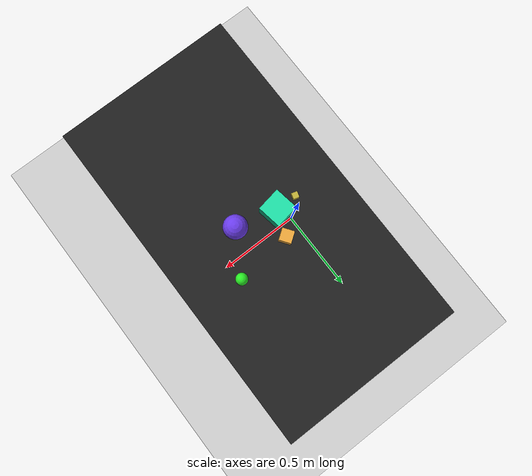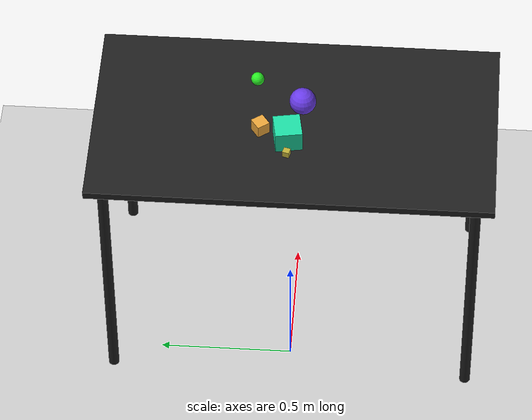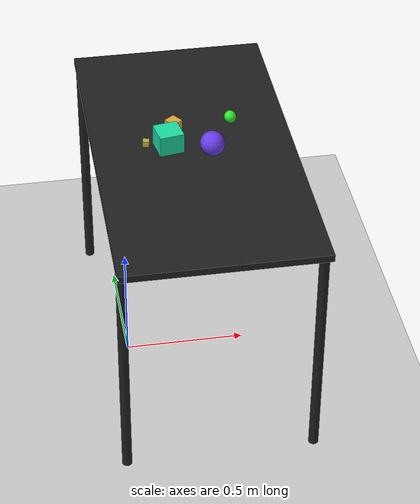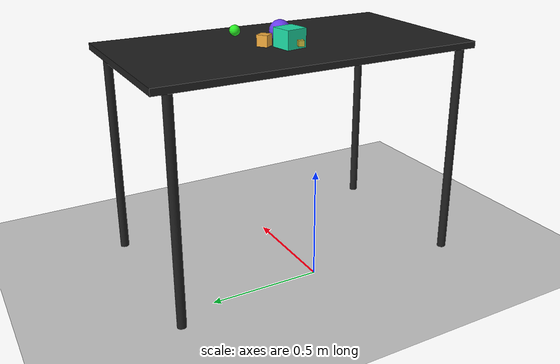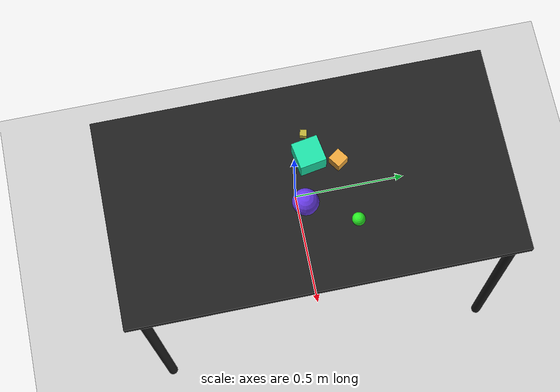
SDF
<?xml version="1.0" ?>
<sdf version="1.6">
  <world name="arm_world">
    <plugin filename="gz-sim-physics-system" name="gz::sim::systems::Physics">
      <engine>
        <filename>libgz-physics-bullet-featherstone-plugin.so</filename>
      </engine>
    </plugin>
    <plugin filename="gz-sim-user-commands-system" name="gz::sim::systems::UserCommands"/>
    <plugin filename="gz-sim-scene-broadcaster-system" name="gz::sim::systems::SceneBroadcaster"/>
    <plugin filename="gz-sim-sensors-system" name="gz::sim::systems::Sensors">
      <render_engine>ogre2</render_engine>
    </plugin>
    <gravity>0.0 0.0 -9.8</gravity>
    <scene>
      <shadows>false</shadows>
    </scene>
    <gui>
      <camera name="user_camera">
        <pose>0.75 -0.75 1.4 0 0.29 2.21</pose>
      </camera>
    </gui>
    <include>
      <uri>https://fuel.gazebosim.org/1.0/OpenRobotics/models/Sun</uri>
    </include>
    <model name="table">
      <static>true</static>
      <include>
        <uri>model://table</uri>
      </include>
      <pose>0.29 0 0 0 0 1.5708</pose>
    </model>
    <model name="ground_plane">
      <static>true</static>
      <link name="link">
        <collision name="collision">
          <geometry>
            <plane>
              <normal>0 0 1</normal>
            </plane>
          </geometry>
          <surface>
            <friction>
              <ode>
                <mu>1.0</mu>
                <mu2>1.0</mu2>
              </ode>
            </friction>
          </surface>
        </collision>
        <visual name="visual">
          <geometry>
            <plane>
              <normal>0 0 1</normal>
              <size>100 100</size>
            </plane>
          </geometry>
          <material>
            <ambient>0.8 0.8 0.8 1</ambient>
            <diffuse>0.8 0.8 0.8 1</diffuse>
            <specular>0.8 0.8 0.8 1</specular>
          </material>
        </visual>
      </link>
    </model>
    <model name="sphere_m_0">
      <pose>0.463 0.151 1.05 0 0 0.04</pose>
      <link name="sphere_m_0_link">
        <collision name="sphere_m_0_collision">
          <geometry>
            <sphere>
              <radius>0.025</radius>
            </sphere>
          </geometry>
        </collision>
        <visual name="sphere_m_0_visual">
          <geometry>
            <sphere>
              <radius>0.025</radius>
            </sphere>
          </geometry>
          <material>
            <ambient>0.16 0.92 0.14 1</ambient>
            <diffuse>0.16 0.92 0.14 1</diffuse>
          </material>
        </visual>
        <velocity_decay>
          <linear>1</linear>
          <angular>1</angular>
        </velocity_decay>
      </link>
    </model>
    <model name="sphere_l_1">
      <pose>0.361 -0.024 1.05 0 0 2.03</pose>
      <link name="sphere_l_1_link">
        <collision name="sphere_l_1_collision">
          <geometry>
            <sphere>
              <radius>0.05</radius>
            </sphere>
          </geometry>
        </collision>
        <visual name="sphere_l_1_visual">
          <geometry>
            <sphere>
              <radius>0.05</radius>
            </sphere>
          </geometry>
          <material>
            <ambient>0.41 0.23 0.91 1</ambient>
            <diffuse>0.41 0.23 0.91 1</diffuse>
          </material>
        </visual>
        <velocity_decay>
          <linear>1</linear>
          <angular>1</angular>
        </velocity_decay>
      </link>
    </model>
    <model name="cube_m_2">
      <pose>0.227 0.125 1.05 0 0 3.76</pose>
      <link name="cube_m_2_link">
        <collision name="cube_m_2_collision">
          <geometry>
            <box>
              <size>0.05 0.05 0.05</size>
            </box>
          </geometry>
        </collision>
        <visual name="cube_m_2_visual">
          <geometry>
            <box>
              <size>0.05 0.05 0.05</size>
            </box>
          </geometry>
          <material>
            <ambient>0.92 0.65 0.23 1</ambient>
            <diffuse>0.92 0.65 0.23 1</diffuse>
          </material>
        </visual>
        <velocity_decay>
          <linear>1</linear>
          <angular>1</angular>
        </velocity_decay>
      </link>
    </model>
    <model name="cube_s_3">
      <pose>0.102 0.02 1.05 0 0 1.3</pose>
      <link name="cube_s_3_link">
        <collision name="cube_s_3_collision">
          <geometry>
            <box>
              <size>0.025 0.025 0.025</size>
            </box>
          </geometry>
        </collision>
        <visual name="cube_s_3_visual">
          <geometry>
            <box>
              <size>0.025 0.025 0.025</size>
            </box>
          </geometry>
          <material>
            <ambient>0.75 0.69 0.22 1</ambient>
            <diffuse>0.75 0.69 0.22 1</diffuse>
          </material>
        </visual>
        <velocity_decay>
          <linear>1</linear>
          <angular>1</angular>
        </velocity_decay>
      </link>
    </model>
    <model name="cube_l_4">
      <pose>0.192 0.022 1.05 0 0 1.74</pose>
      <link name="cube_l_4_link">
        <collision name="cube_l_4_collision">
          <geometry>
            <box>
              <size>0.1 0.1 0.1</size>
            </box>
          </geometry>
        </collision>
        <visual name="cube_l_4_visual">
          <geometry>
            <box>
              <size>0.1 0.1 0.1</size>
            </box>
          </geometry>
          <material>
            <ambient>0.11 0.87 0.65 1</ambient>
            <diffuse>0.11 0.87 0.65 1</diffuse>
          </material>
        </visual>
        <velocity_decay>
          <linear>1</linear>
          <angular>1</angular>
        </velocity_decay>
      </link>
    </model>
  </world>
</sdf>

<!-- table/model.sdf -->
<sdf version="1.5">
  <model name="table">
    <static>true</static>
    <link name="link">
      <collision name="surface">
        <pose>0 0 1.0 0 0 0</pose>
        <geometry>
          <box>
            <size>1.5 0.8 0.03</size>
          </box>
        </geometry>
        <surface>
          <friction>
            <ode>
              <mu>0.6</mu>
              <mu2>0.6</mu2>
            </ode>
          </friction>
        </surface>
      </collision>
      <visual name="surface">
        <pose>0 0 1.0 0 0 0</pose>
        <geometry>
          <box>
            <size>1.5 0.8 0.03</size>
          </box>
        </geometry>
        <material>
          <script>
            <uri>file://media/materials/scripts/gazebo.material</uri>
            <name>Gazebo/Black</name>
          </script>
        </material>
      </visual>
      <collision name="front_left_leg">
        <pose>0.68 0.38 0.5 0 0 0</pose>
        <geometry>
          <cylinder>
            <radius>0.02</radius>
            <length>1.0</length>
          </cylinder>
        </geometry>
      </collision>
      <visual name="front_left_leg">
        <pose>0.68 0.38 0.5 0 0 0</pose>
        <geometry>
          <cylinder>
            <radius>0.02</radius>
            <length>1.0</length>
          </cylinder>
        </geometry>
        <material>
          <script>
            <uri>file://media/materials/scripts/gazebo.material</uri>
            <name>Gazebo/Black</name>
          </script>
        </material>
      </visual>
      <collision name="front_right_leg">
        <pose>0.68 -0.38 0.5 0 0 0</pose>
        <geometry>
          <cylinder>
            <radius>0.02</radius>
            <length>1.0</length>
          </cylinder>
        </geometry>
      </collision>
      <visual name="front_right_leg">
        <pose>0.68 -0.38 0.5 0 0 0</pose>
        <geometry>
          <cylinder>
            <radius>0.02</radius>
            <length>1.0</length>
          </cylinder>
        </geometry>
        <material>
          <script>
            <uri>file://media/materials/scripts/gazebo.material</uri>
            <name>Gazebo/Black</name>
          </script>
        </material>
      </visual>
      <collision name="back_right_leg">
        <pose>-0.68 -0.38 0.5 0 0 0</pose>
        <geometry>
          <cylinder>
            <radius>0.02</radius>
            <length>1.0</length>
          </cylinder>
        </geometry>
      </collision>
      <visual name="back_right_leg">
        <pose>-0.68 -0.38 0.5 0 0 0</pose>
        <geometry>
          <cylinder>
            <radius>0.02</radius>
            <length>1.0</length>
          </cylinder>
        </geometry>
        <material>
          <script>
            <uri>file://media/materials/scripts/gazebo.material</uri>
            <name>Gazebo/Black</name>
          </script>
        </material>
      </visual>
      <collision name="back_left_leg">
        <pose>-0.68 0.38 0.5 0 0 0</pose>
        <geometry>
          <cylinder>
            <radius>0.02</radius>
            <length>1.0</length>
          </cylinder>
        </geometry>
      </collision>
      <visual name="back_left_leg">
        <pose>-0.68 0.38 0.5 0 0 0</pose>
        <geometry>
          <cylinder>
            <radius>0.02</radius>
            <length>1.0</length>
          </cylinder>
        </geometry>
        <material>
          <script>
            <uri>file://media/materials/scripts/gazebo.material</uri>
            <name>Gazebo/Black</name>
          </script>
        </material>
      </visual>
    </link>
  </model>
</sdf>
